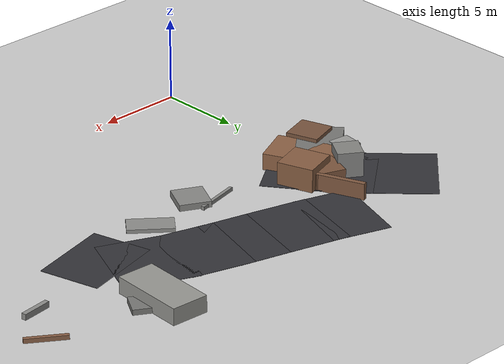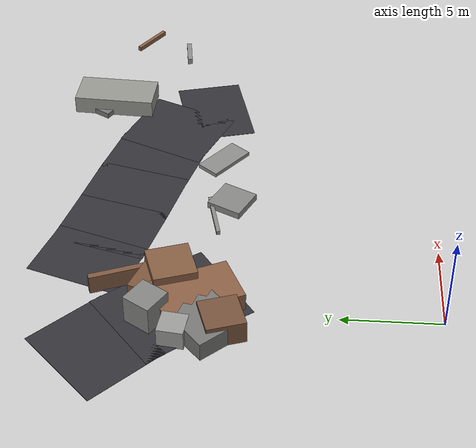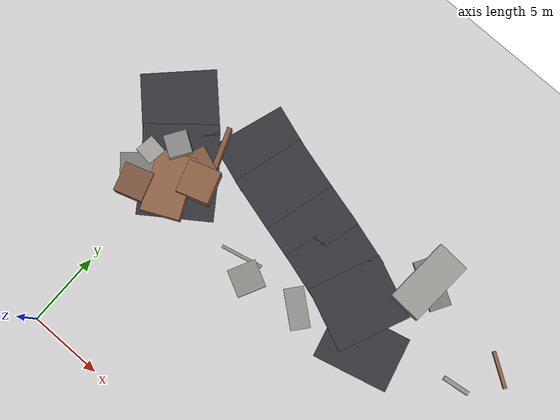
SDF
<sdf version="1.6">
 <world name="navitas_arena">
  <model name="ground_plane">
   <static>true</static>
   <link name="link">
    <collision name="collision">
     <geometry><plane><normal>0 0 1</normal><size>400 400</size></plane></geometry>
     <surface><friction><ode><mu>0.8</mu><mu2>0.8</mu2></ode></friction></surface>
    </collision>
    <visual name="visual">
     <cast_shadows>false</cast_shadows>
     <geometry><plane><normal>0 0 1</normal><size>400 400</size></plane></geometry>
     <material>
      <script><uri>file://media/materials/scripts/gazebo.material</uri><name>Gazebo/Grey</name></script>
     </material>
    </visual>
   </link>
  </model>
  <model name="road_orta_2_12">
   <static>true</static>
   <pose>1.202 11.926 0.040 0 0 2.189</pose>
   <link name="link">
    <collision name="col"><geometry><box><size>3.536 5.000 0.020</size></box></geometry></collision>
    <visual name="vis">
     <geometry><box><size>3.536 5.000 0.020</size></box></geometry>
     <material><ambient>0.20 0.20 0.22 1</ambient><diffuse>0.20 0.20 0.22 1</diffuse></material>
    </visual>
   </link>
  </model>
  <model name="road_orta_2_13">
   <static>true</static>
   <pose>-0.414 14.014 0.040 0 0 2.270</pose>
   <link name="link">
    <collision name="col"><geometry><box><size>3.550 5.000 0.020</size></box></geometry></collision>
    <visual name="vis">
     <geometry><box><size>3.550 5.000 0.020</size></box></geometry>
     <material><ambient>0.20 0.20 0.22 1</ambient><diffuse>0.20 0.20 0.22 1</diffuse></material>
    </visual>
   </link>
  </model>
  <model name="road_orta_2_14">
   <static>true</static>
   <pose>-2.496 16.264 0.040 0 0 2.353</pose>
   <link name="link">
    <collision name="col"><geometry><box><size>4.386 5.000 0.020</size></box></geometry></collision>
    <visual name="vis">
     <geometry><box><size>4.386 5.000 0.020</size></box></geometry>
     <material><ambient>0.20 0.20 0.22 1</ambient><diffuse>0.20 0.20 0.22 1</diffuse></material>
    </visual>
   </link>
  </model>
  <model name="road_orta_3_17">
   <static>true</static>
   <pose>16.561 12.179 0.040 0 0 1.823</pose>
   <link name="link">
    <collision name="col"><geometry><box><size>3.642 5.000 0.020</size></box></geometry></collision>
    <visual name="vis">
     <geometry><box><size>3.642 5.000 0.020</size></box></geometry>
     <material><ambient>0.20 0.20 0.22 1</ambient><diffuse>0.20 0.20 0.22 1</diffuse></material>
    </visual>
   </link>
  </model>
  <model name="road_orta_3_18">
   <static>true</static>
   <pose>14.621 14.185 0.040 0 0 2.740</pose>
   <link name="link">
    <collision name="col"><geometry><box><size>4.371 5.000 0.020</size></box></geometry></collision>
    <visual name="vis">
     <geometry><box><size>4.371 5.000 0.020</size></box></geometry>
     <material><ambient>0.20 0.20 0.22 1</ambient><diffuse>0.20 0.20 0.22 1</diffuse></material>
    </visual>
   </link>
  </model>
  <model name="road_orta_3_19">
   <static>true</static>
   <pose>11.630 15.263 0.040 0 0 2.862</pose>
   <link name="link">
    <collision name="col"><geometry><box><size>3.799 5.000 0.020</size></box></geometry></collision>
    <visual name="vis">
     <geometry><box><size>3.799 5.000 0.020</size></box></geometry>
     <material><ambient>0.20 0.20 0.22 1</ambient><diffuse>0.20 0.20 0.22 1</diffuse></material>
    </visual>
   </link>
  </model>
  <model name="road_orta_3_20">
   <static>true</static>
   <pose>8.782 16.038 0.040 0 0 2.890</pose>
   <link name="link">
    <collision name="col"><geometry><box><size>3.906 5.000 0.020</size></box></geometry></collision>
    <visual name="vis">
     <geometry><box><size>3.906 5.000 0.020</size></box></geometry>
     <material><ambient>0.20 0.20 0.22 1</ambient><diffuse>0.20 0.20 0.22 1</diffuse></material>
    </visual>
   </link>
  </model>
  <model name="road_orta_3_21">
   <static>true</static>
   <pose>5.979 16.775 0.040 0 0 2.879</pose>
   <link name="link">
    <collision name="col"><geometry><box><size>3.689 5.000 0.020</size></box></geometry></collision>
    <visual name="vis">
     <geometry><box><size>3.689 5.000 0.020</size></box></geometry>
     <material><ambient>0.20 0.20 0.22 1</ambient><diffuse>0.20 0.20 0.22 1</diffuse></material>
    </visual>
   </link>
  </model>
  <model name="road_orta_3_22">
   <static>true</static>
   <pose>3.388 17.545 0.040 0 0 2.826</pose>
   <link name="link">
    <collision name="col"><geometry><box><size>3.520 5.000 0.020</size></box></geometry></collision>
    <visual name="vis">
     <geometry><box><size>3.520 5.000 0.020</size></box></geometry>
     <material><ambient>0.20 0.20 0.22 1</ambient><diffuse>0.20 0.20 0.22 1</diffuse></material>
    </visual>
   </link>
  </model>
  <model name="blk_orta_2_2_0">
   <static>true</static>
   <pose>1.196 13.973 0.500 0 0 1.220</pose>
   <link name="link">
    <collision name="col"><geometry><box><size>1.828 1.828 1.000</size></box></geometry></collision>
    <visual name="vis">
     <geometry><box><size>1.828 1.828 1.000</size></box></geometry>
     <material><ambient>0.49 0.34 0.24 1</ambient><diffuse>0.49 0.34 0.24 1</diffuse></material>
    </visual>
   </link>
  </model>
  <model name="blk_orta_2_2_1">
   <static>true</static>
   <pose>1.454 13.337 0.500 0 0 1.004</pose>
   <link name="link">
    <collision name="col"><geometry><box><size>0.899 0.899 1.000</size></box></geometry></collision>
    <visual name="vis">
     <geometry><box><size>0.899 0.899 1.000</size></box></geometry>
     <material><ambient>0.49 0.49 0.48 1</ambient><diffuse>0.49 0.49 0.48 1</diffuse></material>
    </visual>
   </link>
  </model>
  <model name="blk_orta_2_2_2">
   <static>true</static>
   <pose>-0.548 14.093 0.782 0 0 2.575</pose>
   <link name="link">
    <collision name="col"><geometry><box><size>1.511 1.511 1.564</size></box></geometry></collision>
    <visual name="vis">
     <geometry><box><size>1.511 1.511 1.564</size></box></geometry>
     <material><ambient>0.52 0.52 0.51 1</ambient><diffuse>0.52 0.52 0.51 1</diffuse></material>
    </visual>
   </link>
  </model>
  <model name="blk_orta_2_2_3">
   <static>true</static>
   <pose>-1.697 12.717 0.506 0 0 3.014</pose>
   <link name="link">
    <collision name="col"><geometry><box><size>1.296 1.296 1.013</size></box></geometry></collision>
    <visual name="vis">
     <geometry><box><size>1.296 1.296 1.013</size></box></geometry>
     <material><ambient>0.61 0.61 0.60 1</ambient><diffuse>0.61 0.61 0.60 1</diffuse></material>
    </visual>
   </link>
  </model>
  <model name="blk_orta_2_2_4">
   <static>true</static>
   <pose>1.868 15.155 0.500 0 0 1.941</pose>
   <link name="link">
    <collision name="col"><geometry><box><size>4.188 0.306 1.000</size></box></geometry></collision>
    <visual name="vis">
     <geometry><box><size>4.188 0.306 1.000</size></box></geometry>
     <material><ambient>0.50 0.35 0.25 1</ambient><diffuse>0.50 0.35 0.25 1</diffuse></material>
    </visual>
   </link>
  </model>
  <model name="blk_orta_2_2_5">
   <static>true</static>
   <pose>-1.088 10.489 0.614 0 0 1.887</pose>
   <link name="link">
    <collision name="col"><geometry><box><size>1.945 1.945 1.227</size></box></geometry></collision>
    <visual name="vis">
     <geometry><box><size>1.945 1.945 1.227</size></box></geometry>
     <material><ambient>0.47 0.33 0.24 1</ambient><diffuse>0.47 0.33 0.24 1</diffuse></material>
    </visual>
   </link>
  </model>
  <model name="blk_orta_2_2_6">
   <static>true</static>
   <pose>-0.828 11.564 0.500 0 0 0.723</pose>
   <link name="link">
    <collision name="col"><geometry><box><size>3.640 2.607 1.000</size></box></geometry></collision>
    <visual name="vis">
     <geometry><box><size>3.640 2.607 1.000</size></box></geometry>
     <material><ambient>0.47 0.47 0.46 1</ambient><diffuse>0.47 0.47 0.46 1</diffuse></material>
    </visual>
   </link>
  </model>
  <model name="blk_orta_2_2_7">
   <static>true</static>
   <pose>0.637 11.839 0.500 0 0 2.017</pose>
   <link name="link">
    <collision name="col"><geometry><box><size>4.082 2.574 1.000</size></box></geometry></collision>
    <visual name="vis">
     <geometry><box><size>4.082 2.574 1.000</size></box></geometry>
     <material><ambient>0.55 0.38 0.27 1</ambient><diffuse>0.55 0.38 0.27 1</diffuse></material>
    </visual>
   </link>
  </model>
  <model name="deb_orta_47">
   <static>true</static>
   <pose>8.251 10.645 0.187 0 0 2.678</pose>
   <link name="link">
    <collision name="col"><geometry><box><size>1.849 1.907 0.373</size></box></geometry></collision>
    <visual name="vis">
     <geometry><box><size>1.849 1.907 0.373</size></box></geometry>
     <material><ambient>0.53 0.53 0.52 1</ambient><diffuse>0.53 0.53 0.52 1</diffuse></material>
    </visual>
   </link>
  </model>
  <model name="deb_orta_51">
   <static>true</static>
   <pose>17.279 18.139 0.160 0 0 2.612</pose>
   <link name="link">
    <collision name="col"><geometry><box><size>3.283 1.425 0.321</size></box></geometry></collision>
    <visual name="vis">
     <geometry><box><size>3.283 1.425 0.321</size></box></geometry>
     <material><ambient>0.47 0.47 0.46 1</ambient><diffuse>0.47 0.47 0.46 1</diffuse></material>
    </visual>
   </link>
  </model>
  <model name="deb_orta_111">
   <static>true</static>
   <pose>22.491 14.275 0.178 0 0 0.129</pose>
   <link name="link">
    <collision name="col"><geometry><box><size>1.775 0.277 0.356</size></box></geometry></collision>
    <visual name="vis">
     <geometry><box><size>1.775 0.277 0.356</size></box></geometry>
     <material><ambient>0.55 0.55 0.54 1</ambient><diffuse>0.55 0.55 0.54 1</diffuse></material>
    </visual>
   </link>
  </model>
  <model name="deb_orta_137">
   <static>true</static>
   <pose>11.883 11.340 0.111 0 0 2.460</pose>
   <link name="link">
    <collision name="col"><geometry><box><size>2.672 1.295 0.222</size></box></geometry></collision>
    <visual name="vis">
     <geometry><box><size>2.672 1.295 0.222</size></box></geometry>
     <material><ambient>0.55 0.55 0.54 1</ambient><diffuse>0.55 0.55 0.54 1</diffuse></material>
    </visual>
   </link>
  </model>
  <model name="deb_orta_140">
   <static>true</static>
   <pose>7.089 11.502 0.111 0 0 0.231</pose>
   <link name="link">
    <collision name="col"><geometry><box><size>2.821 0.197 0.222</size></box></geometry></collision>
    <visual name="vis">
     <geometry><box><size>2.821 0.197 0.222</size></box></geometry>
     <material><ambient>0.54 0.54 0.53 1</ambient><diffuse>0.54 0.54 0.53 1</diffuse></material>
    </visual>
   </link>
  </model>
  <model name="deb_orta_146">
   <static>true</static>
   <pose>23.919 16.815 0.129 0 0 2.559</pose>
   <link name="link">
    <collision name="col"><geometry><box><size>2.385 0.227 0.258</size></box></geometry></collision>
    <visual name="vis">
     <geometry><box><size>2.385 0.227 0.258</size></box></geometry>
     <material><ambient>0.53 0.37 0.27 1</ambient><diffuse>0.53 0.37 0.27 1</diffuse></material>
    </visual>
   </link>
  </model>
  <model name="chic_orta_3">
   <static>true</static>
   <pose>17.022 18.007 0.500 0 0 1.516</pose>
   <link name="link">
    <collision name="col"><geometry><box><size>4.504 2.207 1.000</size></box></geometry></collision>
    <visual name="vis">
     <geometry><box><size>4.504 2.207 1.000</size></box></geometry>
     <material><ambient>0.59 0.59 0.57 1</ambient><diffuse>0.59 0.59 0.57 1</diffuse></material>
    </visual>
   </link>
  </model>
  <model name="chic_orta_4">
   <static>true</static>
   <pose>2.007 13.173 0.707 0 0 1.893</pose>
   <link name="link">
    <collision name="col"><geometry><box><size>2.191 2.191 1.413</size></box></geometry></collision>
    <visual name="vis">
     <geometry><box><size>2.191 2.191 1.413</size></box></geometry>
     <material><ambient>0.53 0.37 0.26 1</ambient><diffuse>0.53 0.37 0.26 1</diffuse></material>
    </visual>
   </link>
  </model>
 </world>
</sdf>
